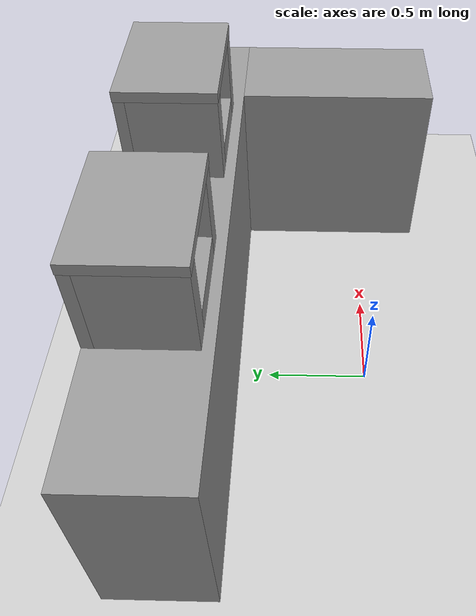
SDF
<sdf version="1.7">
 <world name="default">
  <light name="sun" type="directional">
   <pose>0 0 10 0 -0 0</pose>
   <diffuse>0.8 0.8 0.8 1</diffuse>
   <specular>0.2 0.2 0.2 1</specular>
   <attenuation>
    <range>1000</range>
    <constant>0.9</constant>
    <linear>0.01</linear>
    <quadratic>0.001</quadratic>
   </attenuation>
   <direction>-0.5 0.1 -0.9</direction>
   <spot><inner_angle>0</inner_angle><outer_angle>0</outer_angle><falloff>0</falloff></spot>
  </light>
  <model name="ground_plane">
   <static>1</static>
   <link name="link">
    <collision name="collision">
     <geometry><plane><normal>0 0 1</normal><size>100 100</size></plane></geometry>
     <surface>
      <contact><collide_bitmask>65535</collide_bitmask></contact>
      <friction><ode><mu>100</mu><mu2>50</mu2></ode></friction>
     </surface>
    </collision>
    <visual name="visual">
     <cast_shadows>0</cast_shadows>
     <geometry><plane><normal>0 0 1</normal><size>100 100</size></plane></geometry>
     <material>
      <script><uri>file://media/materials/scripts/gazebo.material</uri><name>Gazebo/Grey</name></script>
     </material>
    </visual>
   </link>
  </model>
  <gravity>0 0 -9.8</gravity>
  <magnetic_field>6e-06 2.3e-05 -4.2e-05</magnetic_field>
  <atmosphere type="adiabatic"/>
  <physics type="ode">
   <max_step_size>0.001</max_step_size>
   <real_time_factor>1</real_time_factor>
   <real_time_update_rate>1000</real_time_update_rate>
  </physics>
  <scene><ambient>0.4 0.4 0.4 1</ambient><background>0.7 0.7 0.7 1</background><shadows>1</shadows></scene>
  <spherical_coordinates>
   <surface_model>EARTH_WGS84</surface_model>
   <latitude_deg>0</latitude_deg>
   <longitude_deg>0</longitude_deg>
   <elevation>0</elevation>
   <heading_deg>0</heading_deg>
  </spherical_coordinates>
  <model name="station">
   <link name="link_0">
    <inertial>
     <mass>1</mass>
     <inertia>
      <ixx>0.166667</ixx>
      <ixy>0</ixy>
      <ixz>0</ixz>
      <iyy>0.166667</iyy>
      <iyz>0</iyz>
      <izz>0.166667</izz>
     </inertia>
    </inertial>
    <pose>-0.371179 -0.089149 -0.771793 0 -0 0</pose>
    <visual name="visual">
     <geometry><box><size>2.75 0.5 1</size></box></geometry>
     <material>
      <lighting>1</lighting>
      <script><uri>file://media/materials/scripts/gazebo.material</uri><name>Gazebo/Grey</name></script>
      <shader type="pixel"><normal_map>__default__</normal_map></shader>
      <ambient>1 1 1 1</ambient>
      <diffuse>1 1 1 1</diffuse>
      <specular>0 0 0 0</specular>
      <emissive>0 0 0 1</emissive>
     </material>
    </visual>
    <collision name="collision_2">
     <geometry><box><size>2.75 0.5 1</size></box></geometry>
     <surface>
      <friction>
       <ode><mu>1</mu><mu2>1</mu2><fdir1>0 0 0</fdir1><slip1>0</slip1><slip2>0</slip2></ode>
       <torsional>
        <coefficient>1</coefficient>
        <patch_radius>0</patch_radius>
        <surface_radius>0</surface_radius>
        <use_patch_radius>1</use_patch_radius>
        <ode><slip>0</slip></ode>
       </torsional>
      </friction>
      <bounce><restitution_coefficient>0</restitution_coefficient><threshold>1e+06</threshold></bounce>
      <contact>
       <collide_without_contact>0</collide_without_contact>
       <collide_without_contact_bitmask>1</collide_without_contact_bitmask>
       <collide_bitmask>1</collide_bitmask>
       <ode>
        <soft_cfm>0</soft_cfm>
        <soft_erp>0.2</soft_erp>
        <kp>1e+13</kp>
        <kd>1</kd>
        <max_vel>0.01</max_vel>
        <min_depth>0</min_depth>
       </ode>
       <bullet>
        <split_impulse>1</split_impulse>
        <split_impulse_penetration_threshold>-0.01</split_impulse_penetration_threshold>
        <soft_cfm>0</soft_cfm>
        <soft_erp>0.2</soft_erp>
        <kp>1e+13</kp>
        <kd>1</kd>
       </bullet>
      </contact>
     </surface>
    </collision>
   </link>
   <link name="link_1">
    <inertial>
     <mass>1</mass>
     <inertia>
      <ixx>0.166667</ixx>
      <ixy>0</ixy>
      <ixz>0</ixz>
      <iyy>0.166667</iyy>
      <iyz>0</iyz>
      <izz>0.166667</izz>
     </inertia>
    </inertial>
    <pose>0.753821 -0.839149 -0.771793 0 -0 0</pose>
    <visual name="visual">
     <geometry><box><size>0.5 1 1</size></box></geometry>
     <material>
      <lighting>1</lighting>
      <script><uri>file://media/materials/scripts/gazebo.material</uri><name>Gazebo/Grey</name></script>
      <shader type="pixel"><normal_map>__default__</normal_map></shader>
      <ambient>1 1 1 1</ambient>
      <diffuse>1 1 1 1</diffuse>
      <specular>0 0 0 0</specular>
      <emissive>0 0 0 1</emissive>
     </material>
    </visual>
    <collision name="collision_1">
     <geometry><box><size>0.5 1 1</size></box></geometry>
     <surface>
      <friction>
       <ode><mu>1</mu><mu2>1</mu2><fdir1>0 0 0</fdir1><slip1>0</slip1><slip2>0</slip2></ode>
       <torsional>
        <coefficient>1</coefficient>
        <patch_radius>0</patch_radius>
        <surface_radius>0</surface_radius>
        <use_patch_radius>1</use_patch_radius>
        <ode><slip>0</slip></ode>
       </torsional>
      </friction>
      <bounce><restitution_coefficient>0</restitution_coefficient><threshold>1e+06</threshold></bounce>
      <contact>
       <collide_without_contact>0</collide_without_contact>
       <collide_without_contact_bitmask>1</collide_without_contact_bitmask>
       <collide_bitmask>1</collide_bitmask>
       <ode>
        <soft_cfm>0</soft_cfm>
        <soft_erp>0.2</soft_erp>
        <kp>1e+13</kp>
        <kd>1</kd>
        <max_vel>0.01</max_vel>
        <min_depth>0</min_depth>
       </ode>
       <bullet>
        <split_impulse>1</split_impulse>
        <split_impulse_penetration_threshold>-0.01</split_impulse_penetration_threshold>
        <soft_cfm>0</soft_cfm>
        <soft_erp>0.2</soft_erp>
        <kp>1e+13</kp>
        <kd>1</kd>
       </bullet>
      </contact>
     </surface>
    </collision>
   </link>
   <link name="link_2">
    <inertial>
     <mass>1</mass>
     <inertia>
      <ixx>0.166667</ixx>
      <ixy>0</ixy>
      <ixz>0</ixz>
      <iyy>0.166667</iyy>
      <iyz>0</iyz>
      <izz>0.166667</izz>
     </inertia>
    </inertial>
    <pose>-1.12118 -0.089149 -0.071793 0 -0 0</pose>
    <visual name="visual">
     <geometry><box><size>0.1 0.4 0.4</size></box></geometry>
     <material>
      <lighting>1</lighting>
      <script><uri>file://media/materials/scripts/gazebo.material</uri><name>Gazebo/Grey</name></script>
      <shader type="pixel"><normal_map>__default__</normal_map></shader>
      <ambient>0.3 0.3 0.3 1</ambient>
      <diffuse>0.7 0.7 0.7 1</diffuse>
      <specular>0.01 0.01 0.01 1</specular>
      <emissive>0 0 0 1</emissive>
     </material>
    </visual>
    <collision name="collision_1">
     <geometry><box><size>0.1 0.4 0.4</size></box></geometry>
     <surface>
      <friction>
       <ode><mu>1</mu><mu2>1</mu2><fdir1>0 0 0</fdir1><slip1>0</slip1><slip2>0</slip2></ode>
       <torsional>
        <coefficient>1</coefficient>
        <patch_radius>0</patch_radius>
        <surface_radius>0</surface_radius>
        <use_patch_radius>1</use_patch_radius>
        <ode><slip>0</slip></ode>
       </torsional>
      </friction>
      <bounce><restitution_coefficient>0</restitution_coefficient><threshold>1e+06</threshold></bounce>
      <contact>
       <collide_without_contact>0</collide_without_contact>
       <collide_without_contact_bitmask>1</collide_without_contact_bitmask>
       <collide_bitmask>1</collide_bitmask>
       <ode>
        <soft_cfm>0</soft_cfm>
        <soft_erp>0.2</soft_erp>
        <kp>1e+13</kp>
        <kd>1</kd>
        <max_vel>0.01</max_vel>
        <min_depth>0</min_depth>
       </ode>
       <bullet>
        <split_impulse>1</split_impulse>
        <split_impulse_penetration_threshold>-0.01</split_impulse_penetration_threshold>
        <soft_cfm>0</soft_cfm>
        <soft_erp>0.2</soft_erp>
        <kp>1e+13</kp>
        <kd>1</kd>
       </bullet>
      </contact>
     </surface>
    </collision>
   </link>
   <link name="link_2_clone">
    <inertial>
     <mass>1</mass>
     <inertia>
      <ixx>0.166667</ixx>
      <ixy>0</ixy>
      <ixz>0</ixz>
      <iyy>0.166667</iyy>
      <iyz>0</iyz>
      <izz>0.166667</izz>
     </inertia>
    </inertial>
    <pose>-0.621179 -0.089149 -0.071793 0 -0 0</pose>
    <visual name="visual">
     <geometry><box><size>0.1 0.4 0.4</size></box></geometry>
     <material>
      <lighting>1</lighting>
      <script><uri>file://media/materials/scripts/gazebo.material</uri><name>Gazebo/Grey</name></script>
      <shader type="pixel"><normal_map>__default__</normal_map></shader>
      <ambient>0.3 0.3 0.3 1</ambient>
      <diffuse>0.7 0.7 0.7 1</diffuse>
      <specular>0.01 0.01 0.01 1</specular>
      <emissive>0 0 0 1</emissive>
     </material>
    </visual>
    <collision name="collision_1">
     <geometry><box><size>0.1 0.4 0.4</size></box></geometry>
     <surface>
      <friction>
       <ode><mu>1</mu><mu2>1</mu2><fdir1>0 0 0</fdir1><slip1>0</slip1><slip2>0</slip2></ode>
       <torsional>
        <coefficient>1</coefficient>
        <patch_radius>0</patch_radius>
        <surface_radius>0</surface_radius>
        <use_patch_radius>1</use_patch_radius>
        <ode><slip>0</slip></ode>
       </torsional>
      </friction>
      <bounce><restitution_coefficient>0</restitution_coefficient><threshold>1e+06</threshold></bounce>
      <contact>
       <collide_without_contact>0</collide_without_contact>
       <collide_without_contact_bitmask>1</collide_without_contact_bitmask>
       <collide_bitmask>1</collide_bitmask>
       <ode>
        <soft_cfm>0</soft_cfm>
        <soft_erp>0.2</soft_erp>
        <kp>1e+13</kp>
        <kd>1</kd>
        <max_vel>0.01</max_vel>
        <min_depth>0</min_depth>
       </ode>
       <bullet>
        <split_impulse>1</split_impulse>
        <split_impulse_penetration_threshold>-0.01</split_impulse_penetration_threshold>
        <soft_cfm>0</soft_cfm>
        <soft_erp>0.2</soft_erp>
        <kp>1e+13</kp>
        <kd>1</kd>
       </bullet>
      </contact>
     </surface>
    </collision>
   </link>
   <link name="link_2_clone_0">
    <inertial>
     <mass>1</mass>
     <inertia>
      <ixx>0.166667</ixx>
      <ixy>0</ixy>
      <ixz>0</ixz>
      <iyy>0.166667</iyy>
      <iyz>0</iyz>
      <izz>0.166667</izz>
     </inertia>
    </inertial>
    <pose>-0.871179 0.135851 -0.071793 0 0 -1.5708</pose>
    <visual name="visual">
     <geometry><box><size>0.05 0.6 0.4</size></box></geometry>
     <material>
      <lighting>1</lighting>
      <script><uri>file://media/materials/scripts/gazebo.material</uri><name>Gazebo/Grey</name></script>
      <shader type="pixel"><normal_map>__default__</normal_map></shader>
      <ambient>0.3 0.3 0.3 1</ambient>
      <diffuse>0.7 0.7 0.7 1</diffuse>
      <specular>0.01 0.01 0.01 1</specular>
      <emissive>0 0 0 1</emissive>
     </material>
    </visual>
    <collision name="collision_1">
     <geometry><box><size>0.05 0.6 0.4</size></box></geometry>
     <surface>
      <friction>
       <ode><mu>1</mu><mu2>1</mu2><fdir1>0 0 0</fdir1><slip1>0</slip1><slip2>0</slip2></ode>
       <torsional>
        <coefficient>1</coefficient>
        <patch_radius>0</patch_radius>
        <surface_radius>0</surface_radius>
        <use_patch_radius>1</use_patch_radius>
        <ode><slip>0</slip></ode>
       </torsional>
      </friction>
      <bounce><restitution_coefficient>0</restitution_coefficient><threshold>1e+06</threshold></bounce>
      <contact>
       <collide_without_contact>0</collide_without_contact>
       <collide_without_contact_bitmask>1</collide_without_contact_bitmask>
       <collide_bitmask>1</collide_bitmask>
       <ode>
        <soft_cfm>0</soft_cfm>
        <soft_erp>0.2</soft_erp>
        <kp>1e+13</kp>
        <kd>1</kd>
        <max_vel>0.01</max_vel>
        <min_depth>0</min_depth>
       </ode>
       <bullet>
        <split_impulse>1</split_impulse>
        <split_impulse_penetration_threshold>-0.01</split_impulse_penetration_threshold>
        <soft_cfm>0</soft_cfm>
        <soft_erp>0.2</soft_erp>
        <kp>1e+13</kp>
        <kd>1</kd>
       </bullet>
      </contact>
     </surface>
    </collision>
   </link>
   <link name="link_2_clone_0_clone">
    <inertial>
     <mass>1</mass>
     <inertia>
      <ixx>0.166667</ixx>
      <ixy>0</ixy>
      <ixz>0</ixz>
      <iyy>0.166667</iyy>
      <iyz>0</iyz>
      <izz>0.166667</izz>
     </inertia>
    </inertial>
    <pose>0.128821 0.135851 -0.071793 0 0 -1.5708</pose>
    <visual name="visual">
     <geometry><box><size>0.05 0.6 0.4</size></box></geometry>
     <material>
      <lighting>1</lighting>
      <script><uri>file://media/materials/scripts/gazebo.material</uri><name>Gazebo/Grey</name></script>
      <shader type="pixel"><normal_map>__default__</normal_map></shader>
      <ambient>0.3 0.3 0.3 1</ambient>
      <diffuse>0.7 0.7 0.7 1</diffuse>
      <specular>0.01 0.01 0.01 1</specular>
      <emissive>0 0 0 1</emissive>
     </material>
    </visual>
    <collision name="collision_1">
     <geometry><box><size>0.05 0.6 0.4</size></box></geometry>
     <surface>
      <friction>
       <ode><mu>1</mu><mu2>1</mu2><fdir1>0 0 0</fdir1><slip1>0</slip1><slip2>0</slip2></ode>
       <torsional>
        <coefficient>1</coefficient>
        <patch_radius>0</patch_radius>
        <surface_radius>0</surface_radius>
        <use_patch_radius>1</use_patch_radius>
        <ode><slip>0</slip></ode>
       </torsional>
      </friction>
      <bounce><restitution_coefficient>0</restitution_coefficient><threshold>1e+06</threshold></bounce>
      <contact>
       <collide_without_contact>0</collide_without_contact>
       <collide_without_contact_bitmask>1</collide_without_contact_bitmask>
       <collide_bitmask>1</collide_bitmask>
       <ode>
        <soft_cfm>0</soft_cfm>
        <soft_erp>0.2</soft_erp>
        <kp>1e+13</kp>
        <kd>1</kd>
        <max_vel>0.01</max_vel>
        <min_depth>0</min_depth>
       </ode>
       <bullet>
        <split_impulse>1</split_impulse>
        <split_impulse_penetration_threshold>-0.01</split_impulse_penetration_threshold>
        <soft_cfm>0</soft_cfm>
        <soft_erp>0.2</soft_erp>
        <kp>1e+13</kp>
        <kd>1</kd>
       </bullet>
      </contact>
     </surface>
    </collision>
   </link>
   <link name="link_2_clone_0_clone_0">
    <inertial>
     <mass>1</mass>
     <inertia>
      <ixx>0.166667</ixx>
      <ixy>0</ixy>
      <ixz>0</ixz>
      <iyy>0.166667</iyy>
      <iyz>0</iyz>
      <izz>0.166667</izz>
     </inertia>
    </inertial>
    <pose>-0.871179 -0.064149 0.153207 1.5708 1.57079 -4e-06</pose>
    <visual name="visual">
     <geometry><box><size>0.05 0.6 0.455</size></box></geometry>
     <material>
      <lighting>1</lighting>
      <script><uri>file://media/materials/scripts/gazebo.material</uri><name>Gazebo/Grey</name></script>
      <shader type="pixel"><normal_map>__default__</normal_map></shader>
      <ambient>0.3 0.3 0.3 1</ambient>
      <diffuse>0.7 0.7 0.7 1</diffuse>
      <specular>0.01 0.01 0.01 1</specular>
      <emissive>0 0 0 1</emissive>
     </material>
    </visual>
   </link>
   <link name="link_2_clone_0_clone_0_clone">
    <inertial>
     <mass>1</mass>
     <inertia>
      <ixx>0.166667</ixx>
      <ixy>0</ixy>
      <ixz>0</ixz>
      <iyy>0.166667</iyy>
      <iyz>0</iyz>
      <izz>0.166667</izz>
     </inertia>
    </inertial>
    <pose>0.128821 -0.064149 0.153207 1.5708 1.57079 -4e-06</pose>
    <visual name="visual">
     <geometry><box><size>0.05 0.6 0.455</size></box></geometry>
     <material>
      <lighting>1</lighting>
      <script><uri>file://media/materials/scripts/gazebo.material</uri><name>Gazebo/Grey</name></script>
      <shader type="pixel"><normal_map>__default__</normal_map></shader>
      <ambient>0.3 0.3 0.3 1</ambient>
      <diffuse>0.7 0.7 0.7 1</diffuse>
      <specular>0.01 0.01 0.01 1</specular>
      <emissive>0 0 0 1</emissive>
     </material>
    </visual>
   </link>
   <link name="link_2_clone_clone">
    <inertial>
     <mass>1</mass>
     <inertia>
      <ixx>0.166667</ixx>
      <ixy>0</ixy>
      <ixz>0</ixz>
      <iyy>0.166667</iyy>
      <iyz>0</iyz>
      <izz>0.166667</izz>
     </inertia>
    </inertial>
    <pose>-0.121179 -0.089149 -0.071793 0 6e-06 0</pose>
    <visual name="visual">
     <geometry><box><size>0.1 0.4 0.4</size></box></geometry>
     <material>
      <lighting>1</lighting>
      <script><uri>file://media/materials/scripts/gazebo.material</uri><name>Gazebo/Grey</name></script>
      <shader type="pixel"><normal_map>__default__</normal_map></shader>
      <ambient>0.3 0.3 0.3 1</ambient>
      <diffuse>0.7 0.7 0.7 1</diffuse>
      <specular>0.01 0.01 0.01 1</specular>
      <emissive>0 0 0 1</emissive>
     </material>
    </visual>
    <collision name="collision_1">
     <geometry><box><size>0.1 0.4 0.4</size></box></geometry>
     <surface>
      <friction>
       <ode><mu>1</mu><mu2>1</mu2><fdir1>0 0 0</fdir1><slip1>0</slip1><slip2>0</slip2></ode>
       <torsional>
        <coefficient>1</coefficient>
        <patch_radius>0</patch_radius>
        <surface_radius>0</surface_radius>
        <use_patch_radius>1</use_patch_radius>
        <ode><slip>0</slip></ode>
       </torsional>
      </friction>
      <bounce><restitution_coefficient>0</restitution_coefficient><threshold>1e+06</threshold></bounce>
      <contact>
       <collide_without_contact>0</collide_without_contact>
       <collide_without_contact_bitmask>1</collide_without_contact_bitmask>
       <collide_bitmask>1</collide_bitmask>
       <ode>
        <soft_cfm>0</soft_cfm>
        <soft_erp>0.2</soft_erp>
        <kp>1e+13</kp>
        <kd>1</kd>
        <max_vel>0.01</max_vel>
        <min_depth>0</min_depth>
       </ode>
       <bullet>
        <split_impulse>1</split_impulse>
        <split_impulse_penetration_threshold>-0.01</split_impulse_penetration_threshold>
        <soft_cfm>0</soft_cfm>
        <soft_erp>0.2</soft_erp>
        <kp>1e+13</kp>
        <kd>1</kd>
       </bullet>
      </contact>
     </surface>
    </collision>
   </link>
   <link name="link_2_clone_clone_0">
    <inertial>
     <mass>1</mass>
     <inertia>
      <ixx>0.166667</ixx>
      <ixy>0</ixy>
      <ixz>0</ixz>
      <iyy>0.166667</iyy>
      <iyz>0</iyz>
      <izz>0.166667</izz>
     </inertia>
    </inertial>
    <pose>0.378821 -0.089149 -0.071793 0 6e-06 0</pose>
    <visual name="visual">
     <geometry><box><size>0.1 0.4 0.4</size></box></geometry>
     <material>
      <lighting>1</lighting>
      <script><uri>file://media/materials/scripts/gazebo.material</uri><name>Gazebo/Grey</name></script>
      <shader type="pixel"><normal_map>__default__</normal_map></shader>
      <ambient>0.3 0.3 0.3 1</ambient>
      <diffuse>0.7 0.7 0.7 1</diffuse>
      <specular>0.01 0.01 0.01 1</specular>
      <emissive>0 0 0 1</emissive>
     </material>
    </visual>
    <collision name="collision_1">
     <geometry><box><size>0.1 0.4 0.4</size></box></geometry>
     <surface>
      <friction>
       <ode><mu>1</mu><mu2>1</mu2><fdir1>0 0 0</fdir1><slip1>0</slip1><slip2>0</slip2></ode>
       <torsional>
        <coefficient>1</coefficient>
        <patch_radius>0</patch_radius>
        <surface_radius>0</surface_radius>
        <use_patch_radius>1</use_patch_radius>
        <ode><slip>0</slip></ode>
       </torsional>
      </friction>
      <bounce><restitution_coefficient>0</restitution_coefficient><threshold>1e+06</threshold></bounce>
      <contact>
       <collide_without_contact>0</collide_without_contact>
       <collide_without_contact_bitmask>1</collide_without_contact_bitmask>
       <collide_bitmask>1</collide_bitmask>
       <ode>
        <soft_cfm>0</soft_cfm>
        <soft_erp>0.2</soft_erp>
        <kp>1e+13</kp>
        <kd>1</kd>
        <max_vel>0.01</max_vel>
        <min_depth>0</min_depth>
       </ode>
       <bullet>
        <split_impulse>1</split_impulse>
        <split_impulse_penetration_threshold>-0.01</split_impulse_penetration_threshold>
        <soft_cfm>0</soft_cfm>
        <soft_erp>0.2</soft_erp>
        <kp>1e+13</kp>
        <kd>1</kd>
       </bullet>
      </contact>
     </surface>
    </collision>
   </link>
   <link name="link_2_clone_clone_1">
    <inertial>
     <mass>1</mass>
     <inertia>
      <ixx>0.166667</ixx>
      <ixy>0</ixy>
      <ixz>0</ixz>
      <iyy>0.166667</iyy>
      <iyz>0</iyz>
      <izz>0.166667</izz>
     </inertia>
    </inertial>
    <pose>-0.871179 -0.089149 -0.221793 3e-06 1.57079 3e-06</pose>
    <visual name="visual">
     <geometry><box><size>0.1 0.4 0.4</size></box></geometry>
     <material>
      <lighting>1</lighting>
      <script><uri>file://media/materials/scripts/gazebo.material</uri><name>Gazebo/Grey</name></script>
      <shader type="pixel"><normal_map>__default__</normal_map></shader>
      <ambient>0.3 0.3 0.3 1</ambient>
      <diffuse>0.7 0.7 0.7 1</diffuse>
      <specular>0.01 0.01 0.01 1</specular>
      <emissive>0 0 0 1</emissive>
     </material>
    </visual>
    <collision name="collision_1">
     <geometry><box><size>0.1 0.4 0.4</size></box></geometry>
     <surface>
      <friction>
       <ode><mu>1</mu><mu2>1</mu2><fdir1>0 0 0</fdir1><slip1>0</slip1><slip2>0</slip2></ode>
       <torsional>
        <coefficient>1</coefficient>
        <patch_radius>0</patch_radius>
        <surface_radius>0</surface_radius>
        <use_patch_radius>1</use_patch_radius>
        <ode><slip>0</slip></ode>
       </torsional>
      </friction>
      <bounce><restitution_coefficient>0</restitution_coefficient><threshold>1e+06</threshold></bounce>
      <contact>
       <collide_without_contact>0</collide_without_contact>
       <collide_without_contact_bitmask>1</collide_without_contact_bitmask>
       <collide_bitmask>1</collide_bitmask>
       <ode>
        <soft_cfm>0</soft_cfm>
        <soft_erp>0.2</soft_erp>
        <kp>1e+13</kp>
        <kd>1</kd>
        <max_vel>0.01</max_vel>
        <min_depth>0</min_depth>
       </ode>
       <bullet>
        <split_impulse>1</split_impulse>
        <split_impulse_penetration_threshold>-0.01</split_impulse_penetration_threshold>
        <soft_cfm>0</soft_cfm>
        <soft_erp>0.2</soft_erp>
        <kp>1e+13</kp>
        <kd>1</kd>
       </bullet>
      </contact>
     </surface>
    </collision>
   </link>
   <link name="link_2_clone_clone_1_clone_0">
    <inertial>
     <mass>1</mass>
     <inertia>
      <ixx>0.166667</ixx>
      <ixy>0</ixy>
      <ixz>0</ixz>
      <iyy>0.166667</iyy>
      <iyz>0</iyz>
      <izz>0.166667</izz>
     </inertia>
    </inertial>
    <pose>0.128821 -0.089149 -0.221793 -3e-06 1.57079 -3e-06</pose>
    <visual name="visual">
     <geometry><box><size>0.1 0.4 0.4</size></box></geometry>
     <material>
      <lighting>1</lighting>
      <script><uri>file://media/materials/scripts/gazebo.material</uri><name>Gazebo/Grey</name></script>
      <shader type="pixel"><normal_map>__default__</normal_map></shader>
      <ambient>0.3 0.3 0.3 1</ambient>
      <diffuse>0.7 0.7 0.7 1</diffuse>
      <specular>0.01 0.01 0.01 1</specular>
      <emissive>0 0 0 1</emissive>
     </material>
    </visual>
    <collision name="collision_1">
     <geometry><box><size>0.1 0.4 0.4</size></box></geometry>
     <surface>
      <friction>
       <ode><mu>1</mu><mu2>1</mu2><fdir1>0 0 0</fdir1><slip1>0</slip1><slip2>0</slip2></ode>
       <torsional>
        <coefficient>1</coefficient>
        <patch_radius>0</patch_radius>
        <surface_radius>0</surface_radius>
        <use_patch_radius>1</use_patch_radius>
        <ode><slip>0</slip></ode>
       </torsional>
      </friction>
      <bounce><restitution_coefficient>0</restitution_coefficient><threshold>1e+06</threshold></bounce>
      <contact>
       <collide_without_contact>0</collide_without_contact>
       <collide_without_contact_bitmask>1</collide_without_contact_bitmask>
       <collide_bitmask>1</collide_bitmask>
       <ode>
        <soft_cfm>0</soft_cfm>
        <soft_erp>0.2</soft_erp>
        <kp>1e+13</kp>
        <kd>1</kd>
        <max_vel>0.01</max_vel>
        <min_depth>0</min_depth>
       </ode>
       <bullet>
        <split_impulse>1</split_impulse>
        <split_impulse_penetration_threshold>-0.01</split_impulse_penetration_threshold>
        <soft_cfm>0</soft_cfm>
        <soft_erp>0.2</soft_erp>
        <kp>1e+13</kp>
        <kd>1</kd>
       </bullet>
      </contact>
     </surface>
    </collision>
   </link>
   <joint name="link_0_JOINT_10" type="fixed">
    <parent>link_0</parent>
    <child>link_2_clone_0_clone</child>
    <axis>
     <xyz>1 0 0</xyz>
     <limit>
      <lower>-1.79769e+308</lower>
      <upper>1.79769e+308</upper>
      <effort>-1</effort>
      <velocity>-1</velocity>
     </limit>
     <dynamics>
      <spring_reference>0</spring_reference>
      <spring_stiffness>0</spring_stiffness>
      <damping>0</damping>
     </dynamics>
    </axis>
    <physics>
     <ode><limit><cfm>0</cfm><erp>0.2</erp></limit><suspension><cfm>0</cfm><erp>0.2</erp></suspension></ode>
    </physics>
   </joint>
   <joint name="link_0_JOINT_11" type="fixed">
    <parent>link_0</parent>
    <child>link_2_clone_0_clone_0</child>
    <axis>
     <xyz>1 0 0</xyz>
     <limit>
      <lower>-1.79769e+308</lower>
      <upper>1.79769e+308</upper>
      <effort>-1</effort>
      <velocity>-1</velocity>
     </limit>
     <dynamics>
      <spring_reference>0</spring_reference>
      <spring_stiffness>0</spring_stiffness>
      <damping>0</damping>
     </dynamics>
    </axis>
    <physics>
     <ode><limit><cfm>0</cfm><erp>0.2</erp></limit><suspension><cfm>0</cfm><erp>0.2</erp></suspension></ode>
    </physics>
   </joint>
   <joint name="link_0_JOINT_12" type="fixed">
    <parent>link_0</parent>
    <child>link_2_clone_0_clone_0_clone</child>
    <axis>
     <xyz>1 0 0</xyz>
     <limit>
      <lower>-1.79769e+308</lower>
      <upper>1.79769e+308</upper>
      <effort>-1</effort>
      <velocity>-1</velocity>
     </limit>
     <dynamics>
      <spring_reference>0</spring_reference>
      <spring_stiffness>0</spring_stiffness>
      <damping>0</damping>
     </dynamics>
    </axis>
    <physics>
     <ode><limit><cfm>0</cfm><erp>0.2</erp></limit><suspension><cfm>0</cfm><erp>0.2</erp></suspension></ode>
    </physics>
   </joint>
   <joint name="link_0_JOINT_1" type="fixed">
    <parent>link_0</parent>
    <child>link_2_clone</child>
    <physics>
     <ode><limit><cfm>0</cfm><erp>0.2</erp></limit><suspension><cfm>0</cfm><erp>0.2</erp></suspension></ode>
    </physics>
   </joint>
   <joint name="link_0_JOINT_2" type="fixed">
    <parent>link_0</parent>
    <child>link_2_clone_clone_1</child>
    <axis>
     <xyz>1 0 0</xyz>
     <limit>
      <lower>-1.79769e+308</lower>
      <upper>1.79769e+308</upper>
      <effort>-1</effort>
      <velocity>-1</velocity>
     </limit>
     <dynamics>
      <spring_reference>0</spring_reference>
      <spring_stiffness>0</spring_stiffness>
      <damping>0</damping>
     </dynamics>
    </axis>
    <physics>
     <ode><limit><cfm>0</cfm><erp>0.2</erp></limit><suspension><cfm>0</cfm><erp>0.2</erp></suspension></ode>
    </physics>
   </joint>
   <joint name="link_0_JOINT_3" type="fixed">
    <parent>link_0</parent>
    <child>link_2</child>
    <axis>
     <xyz>1 0 0</xyz>
     <limit>
      <lower>-1.79769e+308</lower>
      <upper>1.79769e+308</upper>
      <effort>-1</effort>
      <velocity>-1</velocity>
     </limit>
     <dynamics>
      <spring_reference>0</spring_reference>
      <spring_stiffness>0</spring_stiffness>
      <damping>0</damping>
     </dynamics>
    </axis>
    <physics>
     <ode><limit><cfm>0</cfm><erp>0.2</erp></limit><suspension><cfm>0</cfm><erp>0.2</erp></suspension></ode>
    </physics>
   </joint>
   <joint name="link_0_JOINT_4" type="fixed">
    <parent>link_0</parent>
    <child>link_2_clone_clone</child>
    <axis>
     <xyz>1 0 0</xyz>
     <limit>
      <lower>-1.79769e+308</lower>
      <upper>1.79769e+308</upper>
      <effort>-1</effort>
      <velocity>-1</velocity>
     </limit>
     <dynamics>
      <spring_reference>0</spring_reference>
      <spring_stiffness>0</spring_stiffness>
      <damping>0</damping>
     </dynamics>
    </axis>
    <physics>
     <ode><limit><cfm>0</cfm><erp>0.2</erp></limit><suspension><cfm>0</cfm><erp>0.2</erp></suspension></ode>
    </physics>
   </joint>
   <joint name="link_0_JOINT_5" type="fixed">
    <parent>link_0</parent>
    <child>link_2_clone_clone_1_clone_0</child>
    <axis>
     <xyz>1 0 0</xyz>
     <limit>
      <lower>-1.79769e+308</lower>
      <upper>1.79769e+308</upper>
      <effort>-1</effort>
      <velocity>-1</velocity>
     </limit>
     <dynamics>
      <spring_reference>0</spring_reference>
      <spring_stiffness>0</spring_stiffness>
      <damping>0</damping>
     </dynamics>
    </axis>
    <physics>
     <ode><limit><cfm>0</cfm><erp>0.2</erp></limit><suspension><cfm>0</cfm><erp>0.2</erp></suspension></ode>
    </physics>
   </joint>
   <joint name="link_0_JOINT_6" type="fixed">
    <parent>link_0</parent>
    <child>link_1</child>
    <axis>
     <xyz>1 0 0</xyz>
     <limit>
      <lower>-1.79769e+308</lower>
      <upper>1.79769e+308</upper>
      <effort>-1</effort>
      <velocity>-1</velocity>
     </limit>
     <dynamics>
      <spring_reference>0</spring_reference>
      <spring_stiffness>0</spring_stiffness>
      <damping>0</damping>
     </dynamics>
    </axis>
    <physics>
     <ode><limit><cfm>0</cfm><erp>0.2</erp></limit><suspension><cfm>0</cfm><erp>0.2</erp></suspension></ode>
    </physics>
   </joint>
   <joint name="link_0_JOINT_7" type="fixed">
    <parent>link_0</parent>
    <child>link_2_clone_clone_0</child>
    <axis>
     <xyz>1 0 0</xyz>
     <limit>
      <lower>-1.79769e+308</lower>
      <upper>1.79769e+308</upper>
      <effort>-1</effort>
      <velocity>-1</velocity>
     </limit>
     <dynamics>
      <spring_reference>0</spring_reference>
      <spring_stiffness>0</spring_stiffness>
      <damping>0</damping>
     </dynamics>
    </axis>
    <physics>
     <ode><limit><cfm>0</cfm><erp>0.2</erp></limit><suspension><cfm>0</cfm><erp>0.2</erp></suspension></ode>
    </physics>
   </joint>
   <joint name="link_0_JOINT_8" type="fixed">
    <parent>link_0</parent>
    <child>link_2_clone_0</child>
    <axis>
     <xyz>1 0 0</xyz>
     <limit>
      <lower>-1.79769e+308</lower>
      <upper>1.79769e+308</upper>
      <effort>-1</effort>
      <velocity>-1</velocity>
     </limit>
     <dynamics>
      <spring_reference>0</spring_reference>
      <spring_stiffness>0</spring_stiffness>
      <damping>0</damping>
     </dynamics>
    </axis>
    <physics>
     <ode><limit><cfm>0</cfm><erp>0.2</erp></limit><suspension><cfm>0</cfm><erp>0.2</erp></suspension></ode>
    </physics>
   </joint>
   <joint name="link_0_JOINT_9" type="fixed">
    <parent>link_0</parent>
    <child>link_2_clone_0</child>
    <axis>
     <xyz>1 0 0</xyz>
     <limit>
      <lower>-1.79769e+308</lower>
      <upper>1.79769e+308</upper>
      <effort>-1</effort>
      <velocity>-1</velocity>
     </limit>
     <dynamics>
      <spring_reference>0</spring_reference>
      <spring_stiffness>0</spring_stiffness>
      <damping>0</damping>
     </dynamics>
    </axis>
    <physics>
     <ode><limit><cfm>0</cfm><erp>0.2</erp></limit><suspension><cfm>0</cfm><erp>0.2</erp></suspension></ode>
    </physics>
   </joint>
   <static>0</static>
   <pose>0.6 1 1.25 0 -0 0</pose>
  </model>
 </world>
</sdf>
